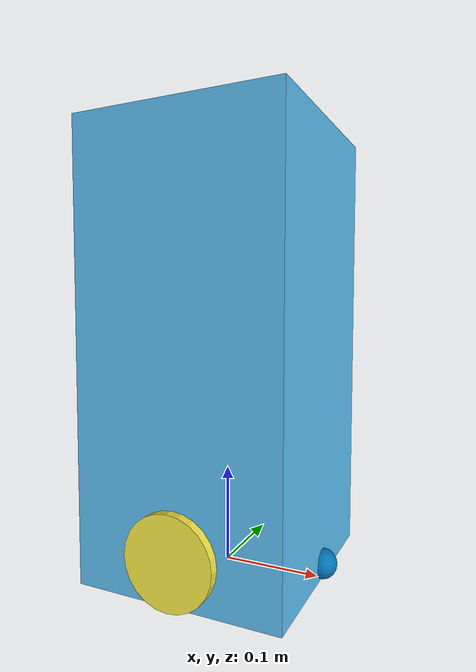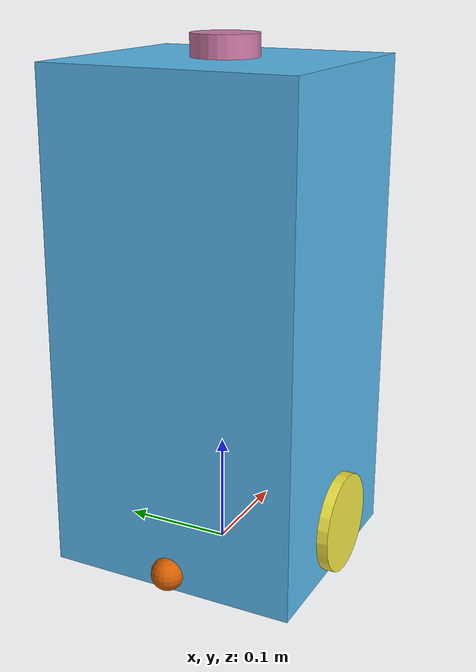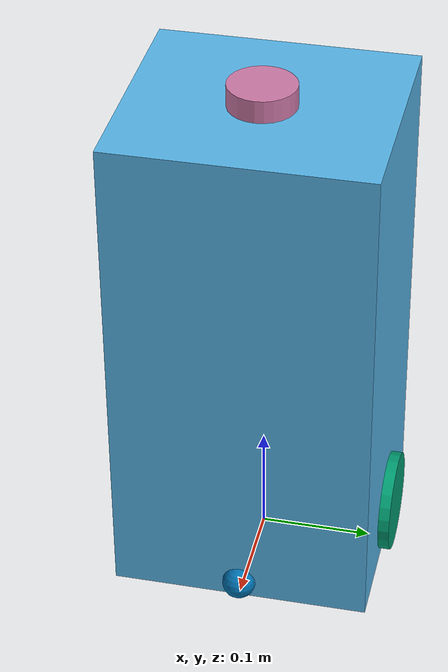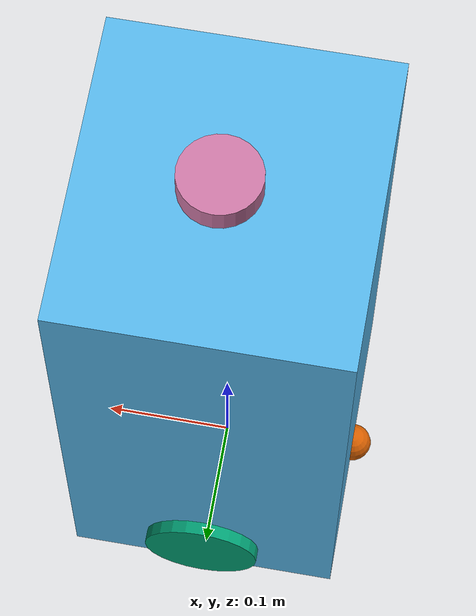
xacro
<?xml version="1.0"?>
<robot xmlns:xacro="http://www.ros.org/wiki/xacro" name="my_robot">

  <!-- ====== params (meters) ====== -->
  <xacro:property name="wheel_radius" value="0.045"/>          <!-- 4.5cm -->
  <xacro:property name="wheel_sep"    value="0.23"/>           <!-- left-right wheel center distance 23cm -->
  <xacro:property name="base_height"  value="0.45"/>           <!-- bottom to top 45cm -->
  <xacro:property name="base_length"  value="0.21"/>           <!-- caster +-10.5cm => length ~21cm -->
  <xacro:property name="base_width"   value="0.23"/>           <!-- 대략 wheel_sep와 유사 -->
  <xacro:property name="lidar_diam"   value="0.06"/>           <!-- 6cm -->
  <xacro:property name="lidar_h_from_ground" value="0.44"/>    <!-- 바닥 기준 라이다 위치 44cm -->

  <!-- base_link는 "바퀴 축 높이" 기준 -->
  <!-- base_footprint(바닥) -> base_link(축 높이) -->
  <link name="base_footprint"/>

  <joint name="base_footprint_to_base_link" type="fixed">
    <parent link="base_footprint"/>
    <child  link="base_link"/>
    <origin xyz="0 0 ${wheel_radius}" rpy="0 0 0"/>
  </joint>

  <link name="base_link">
    <visual>
      <!-- 바닥~상단 45cm 박스가 바닥에서 시작한다고 가정 -->
      <!-- base_link는 축 높이(4.5cm)이므로 박스 중심은 (0.45/2 - 0.045)=0.18m -->
      <origin xyz="0 0 ${base_height/2 - wheel_radius}" rpy="0 0 0"/>
      <geometry>
        <box size="${base_length} ${base_width} ${base_height}"/>
      </geometry>
    </visual>
    <collision>
      <origin xyz="0 0 ${base_height/2 - wheel_radius}" rpy="0 0 0"/>
      <geometry>
        <box size="${base_length} ${base_width} ${base_height}"/>
      </geometry>
    </collision>
  </link>

  <!-- wheels (visual only for now) -->
  <link name="left_wheel_link">
    <visual>
      <origin xyz="0 0 0" rpy="1.5708 0 0"/> <!-- cylinder axis -> y -->
      <geometry>
        <cylinder radius="${wheel_radius}" length="0.02"/>
      </geometry>
    </visual>
  </link>

  <link name="right_wheel_link">
    <visual>
      <origin xyz="0 0 0" rpy="1.5708 0 0"/>
      <geometry>
        <cylinder radius="${wheel_radius}" length="0.02"/>
      </geometry>
    </visual>
  </link>

  <joint name="left_wheel_joint" type="continuous">
    <parent link="base_link"/>
    <child  link="left_wheel_link"/>
    <origin xyz="0 ${wheel_sep/2} 0" rpy="0 0 0"/>
    <axis xyz="0 1 0"/>
  </joint>

  <joint name="right_wheel_joint" type="continuous">
    <parent link="base_link"/>
    <child  link="right_wheel_link"/>
    <origin xyz="0 ${-wheel_sep/2} 0" rpy="0 0 0"/>
    <axis xyz="0 1 0"/>
  </joint>

  <!-- caster (대충 표시만) -->
  <link name="front_caster_link">
    <visual>
      <geometry><sphere radius="0.015"/></geometry>
    </visual>
  </link>
  <joint name="front_caster_joint" type="fixed">
    <parent link="base_footprint"/>
    <child  link="front_caster_link"/>
    <origin xyz="0.105 0 0.015" rpy="0 0 0"/> <!-- +10.5cm -->
  </joint>

  <link name="rear_caster_link">
    <visual>
      <geometry><sphere radius="0.015"/></geometry>
    </visual>
  </link>
  <joint name="rear_caster_joint" type="fixed">
    <parent link="base_footprint"/>
    <child  link="rear_caster_link"/>
    <origin xyz="-0.105 0 0.015" rpy="0 0 0"/> <!-- -10.5cm -->
  </joint>

  <!-- ====== LiDAR frame ====== -->
  <!-- 바닥 기준 44cm인데 base_link는 바닥에서 4.5cm 위 => base_link 기준 z = 0.44 - 0.045 = 0.395 -->
  <link name="laser_frame">
    <visual>
      <origin xyz="0 0 0" rpy="0 0 0"/>
      <geometry>
        <cylinder radius="${lidar_diam/2}" length="0.06"/>
      </geometry>
    </visual>
  </link>

  <joint name="laser_joint" type="fixed">
    <parent link="base_link"/>
    <child  link="laser_frame"/>
    <origin xyz="0.005 0 ${lidar_h_from_ground - wheel_radius}" rpy="0 0 0"/> <!-- x=+0.5cm, y=0 -->
  </joint>

</robot>
